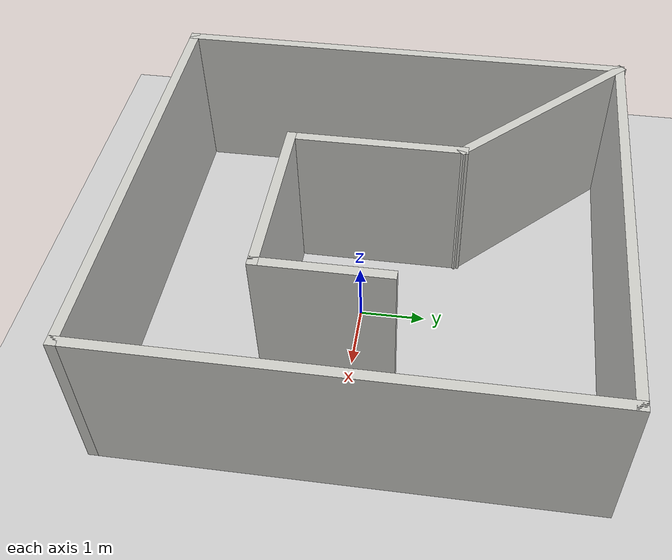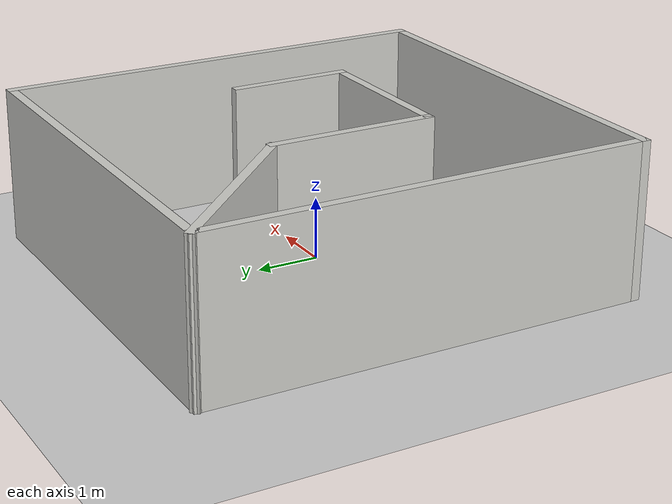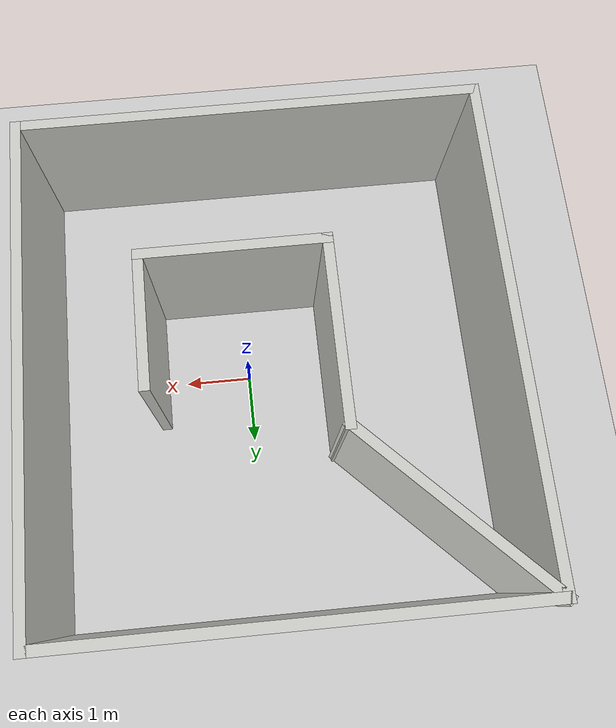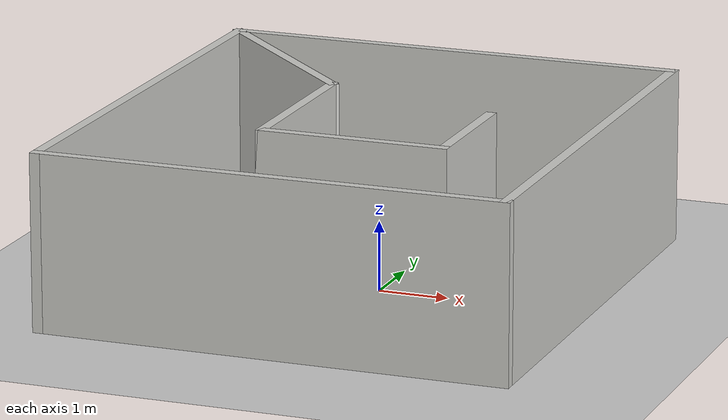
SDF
<sdf version="1.7">
 <world name="default">
  <light name="sun" type="directional">
   <pose>0 0 10 0 -0 0</pose>
   <diffuse>0.8 0.8 0.8 1</diffuse>
   <specular>0.2 0.2 0.2 1</specular>
   <attenuation>
    <range>1000</range>
    <constant>0.9</constant>
    <linear>0.01</linear>
    <quadratic>0.001</quadratic>
   </attenuation>
   <direction>-0.5 0.1 -0.9</direction>
   <spot><inner_angle>0</inner_angle><outer_angle>0</outer_angle><falloff>0</falloff></spot>
  </light>
  <model name="ground_plane">
   <static>1</static>
   <link name="link">
    <collision name="collision">
     <geometry><plane><normal>0 0 1</normal><size>100 100</size></plane></geometry>
     <surface>
      <contact><collide_bitmask>65535</collide_bitmask></contact>
      <friction><ode><mu>100</mu><mu2>50</mu2></ode></friction>
     </surface>
    </collision>
    <visual name="visual">
     <cast_shadows>0</cast_shadows>
     <geometry><plane><normal>0 0 1</normal><size>100 100</size></plane></geometry>
     <material>
      <script><uri>file://media/materials/scripts/gazebo.material</uri><name>Gazebo/Grey</name></script>
     </material>
    </visual>
   </link>
  </model>
  <gravity>0 0 -9.8</gravity>
  <magnetic_field>6e-06 2.3e-05 -4.2e-05</magnetic_field>
  <atmosphere type="adiabatic"/>
  <physics type="ode">
   <max_step_size>0.001</max_step_size>
   <real_time_factor>1</real_time_factor>
   <real_time_update_rate>1000</real_time_update_rate>
  </physics>
  <scene><ambient>0.4 0.4 0.4 1</ambient><background>0.7 0.7 0.7 1</background><shadows>1</shadows></scene>
  <spherical_coordinates>
   <surface_model>EARTH_WGS84</surface_model>
   <latitude_deg>0</latitude_deg>
   <longitude_deg>0</longitude_deg>
   <elevation>0</elevation>
   <heading_deg>0</heading_deg>
  </spherical_coordinates>
  <model name="2">
   <pose>-0.318144 0.21728 0 0 -0 0</pose>
   <link name="Wall_0">
    <collision name="Wall_0_Collision">
     <geometry><box><size>6.75 0.15 2.5</size></box></geometry>
     <pose>0 0 1.25 0 -0 0</pose>
    </collision>
    <visual name="Wall_0_Visual">
     <pose>0 0 1.25 0 -0 0</pose>
     <geometry><box><size>6.75 0.15 2.5</size></box></geometry>
     <material>
      <script><uri>file://media/materials/scripts/gazebo.material</uri><name>Gazebo/CeilingTiled</name></script>
      <ambient>1 1 1 1</ambient>
     </material>
     <meta><layer>0</layer></meta>
    </visual>
    <pose>0.015533 3.53447 0 0 -0 0</pose>
   </link>
   <link name="Wall_1">
    <collision name="Wall_1_Collision">
     <geometry><box><size>7.25 0.15 2.5</size></box></geometry>
     <pose>0 0 1.25 0 -0 0</pose>
    </collision>
    <visual name="Wall_1_Visual">
     <pose>0 0 1.25 0 -0 0</pose>
     <geometry><box><size>7.25 0.15 2.5</size></box></geometry>
     <material>
      <script><uri>file://media/materials/scripts/gazebo.material</uri><name>Gazebo/CeilingTiled</name></script>
      <ambient>1 1 1 1</ambient>
     </material>
     <meta><layer>0</layer></meta>
    </visual>
    <pose>3.31553 -0.015533 0 0 -0 -1.5708</pose>
   </link>
   <link name="Wall_2">
    <collision name="Wall_2_Collision">
     <geometry><box><size>6.75 0.15 2.5</size></box></geometry>
     <pose>0 0 1.25 0 -0 0</pose>
    </collision>
    <visual name="Wall_2_Visual">
     <pose>0 0 1.25 0 -0 0</pose>
     <geometry><box><size>6.75 0.15 2.5</size></box></geometry>
     <material>
      <script><uri>file://media/materials/scripts/gazebo.material</uri><name>Gazebo/CeilingTiled</name></script>
      <ambient>1 1 1 1</ambient>
     </material>
     <meta><layer>0</layer></meta>
    </visual>
    <pose>0.015533 -3.56553 0 0 -0 3.14159</pose>
   </link>
   <link name="Wall_3">
    <collision name="Wall_3_Collision">
     <geometry><box><size>7.25 0.15 2.5</size></box></geometry>
     <pose>0 0 1.25 0 -0 0</pose>
    </collision>
    <visual name="Wall_3_Visual">
     <pose>0 0 1.25 0 -0 0</pose>
     <geometry><box><size>7.25 0.15 2.5</size></box></geometry>
     <material>
      <script><uri>file://media/materials/scripts/gazebo.material</uri><name>Gazebo/CeilingTiled</name></script>
      <ambient>1 1 1 1</ambient>
     </material>
     <meta><layer>0</layer></meta>
    </visual>
    <pose>-3.28447 -0.015533 0 0 -0 1.5708</pose>
   </link>
   <link name="Wall_4">
    <collision name="Wall_4_Collision">
     <geometry><box><size>3.5 0.15 2.5</size></box></geometry>
     <pose>0 0 1.25 0 -0 0</pose>
    </collision>
    <visual name="Wall_4_Visual">
     <pose>0 0 1.25 0 -0 0</pose>
     <geometry><box><size>3.5 0.15 2.5</size></box></geometry>
     <material>
      <script><uri>file://media/materials/scripts/gazebo.material</uri><name>Gazebo/CeilingTiled</name></script>
      <ambient>1 1 1 1</ambient>
     </material>
     <meta><layer>0</layer></meta>
    </visual>
    <pose>-2.10006 2.35006 0 0 -0 -0.785398</pose>
   </link>
   <link name="Wall_5">
    <collision name="Wall_5_Collision">
     <geometry><box><size>2.75 0.15 2.5</size></box></geometry>
     <pose>0 0 1.25 0 -0 0</pose>
    </collision>
    <visual name="Wall_5_Visual">
     <pose>0 0 1.25 0 -0 0</pose>
     <geometry><box><size>2.75 0.15 2.5</size></box></geometry>
     <material>
      <script><uri>file://media/materials/scripts/gazebo.material</uri><name>Gazebo/CeilingTiled</name></script>
      <ambient>1 1 1 1</ambient>
     </material>
     <meta><layer>0</layer></meta>
    </visual>
    <pose>-0.91566 -0.134341 0 0 -0 -1.5708</pose>
   </link>
   <link name="Wall_6">
    <collision name="Wall_6_Collision">
     <geometry><box><size>2.75 0.15 2.5</size></box></geometry>
     <pose>0 0 1.25 0 -0 0</pose>
    </collision>
    <visual name="Wall_6_Visual">
     <pose>0 0 1.25 0 -0 0</pose>
     <geometry><box><size>2.75 0.15 2.5</size></box></geometry>
     <material>
      <script><uri>file://media/materials/scripts/gazebo.material</uri><name>Gazebo/CeilingTiled</name></script>
      <ambient>1 1 1 1</ambient>
     </material>
     <meta><layer>0</layer></meta>
    </visual>
    <pose>0.38434 -1.43434 0 0 -0 0</pose>
   </link>
   <link name="Wall_7">
    <collision name="Wall_7_Collision">
     <geometry><box><size>2 0.15 2.5</size></box></geometry>
     <pose>0 0 1.25 0 -0 0</pose>
    </collision>
    <visual name="Wall_7_Visual">
     <pose>0 0 1.25 0 -0 0</pose>
     <geometry><box><size>2 0.15 2.5</size></box></geometry>
     <material>
      <script><uri>file://media/materials/scripts/gazebo.material</uri><name>Gazebo/CeilingTiled</name></script>
      <ambient>1 1 1 1</ambient>
     </material>
     <meta><layer>0</layer></meta>
    </visual>
    <pose>1.68434 -0.509341 0 0 -0 1.5708</pose>
   </link>
   <static>1</static>
  </model>
 </world>
</sdf>
